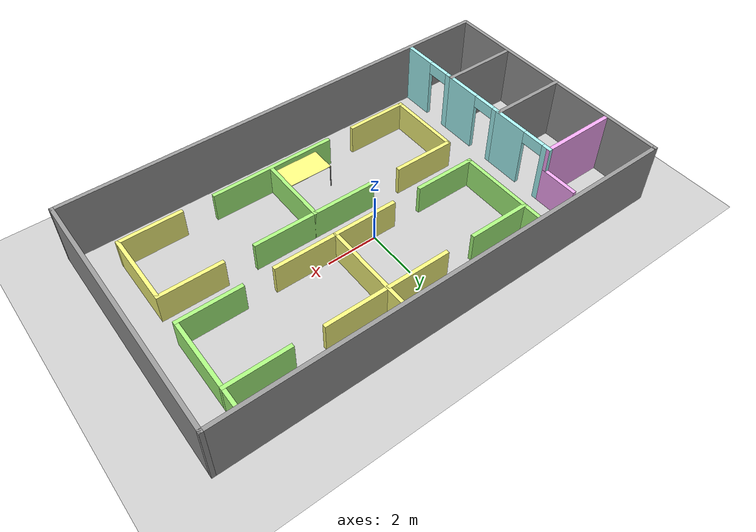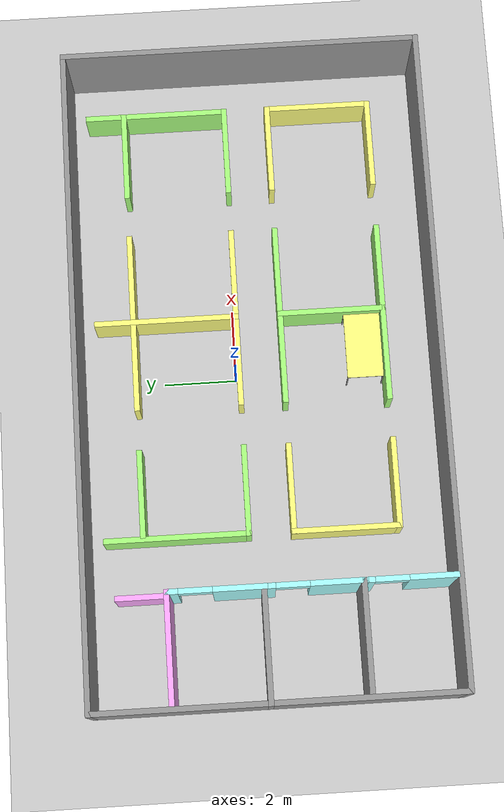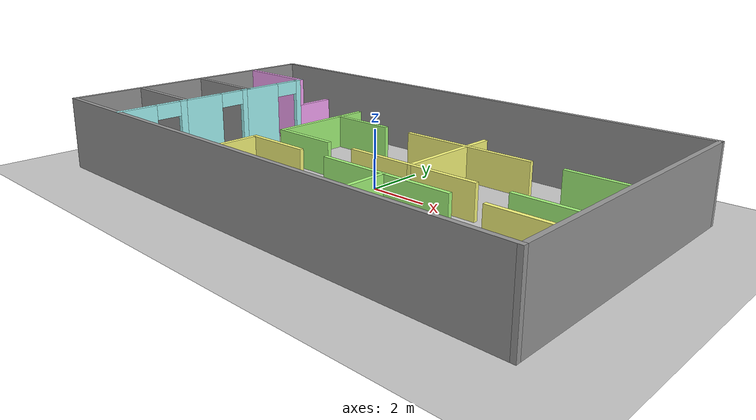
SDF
<sdf version="1.6">
 <world name="default">
  <model name="ground_plane">
   <static>1</static>
   <link name="link">
    <collision name="collision">
     <geometry><plane><normal>0 0 1</normal><size>100 100</size></plane></geometry>
     <surface><friction><ode><mu>100</mu><mu2>50</mu2></ode></friction></surface>
    </collision>
    <visual name="visual">
     <cast_shadows>0</cast_shadows>
     <geometry><plane><normal>0 0 1</normal><size>100 100</size></plane></geometry>
     <material>
      <script><uri>file://media/materials/scripts/gazebo.material</uri><name>Gazebo/Grey</name></script>
     </material>
    </visual>
   </link>
  </model>
  <model name="sr_office">
   <pose>-0.02579 -0.62634 0 0 -0 0</pose>
   <link name="Wall_11">
    <pose>-6.0106 -3.67095 0 0 -0 1.57171</pose>
    <visual name="Wall_11_Visual_0">
     <pose>-0.611587 0 1.25 0 -0 0</pose>
     <geometry><box><size>1.41152 0.15 2.5</size></box></geometry>
     <material>
      <script><uri>file://media/materials/scripts/gazebo.material</uri><name>Gazebo/Grey</name></script>
      <ambient>0.666667 1 1 1</ambient>
     </material>
     <meta><layer>0</layer></meta>
    </visual>
    <collision name="Wall_11_Collision_0">
     <geometry><box><size>1.41152 0.15 2.5</size></box></geometry>
     <pose>-0.611587 0 1.25 0 -0 0</pose>
    </collision>
    <visual name="Wall_11_Visual_1">
     <pose>1.15576 0 1.25 0 -0 0</pose>
     <geometry><box><size>0.323174 0.15 2.5</size></box></geometry>
     <material>
      <script><uri>file://media/materials/scripts/gazebo.material</uri><name>Gazebo/Grey</name></script>
      <ambient>0.666667 1 1 1</ambient>
     </material>
     <meta><layer>0</layer></meta>
    </visual>
    <collision name="Wall_11_Collision_1">
     <geometry><box><size>0.323174 0.15 2.5</size></box></geometry>
     <pose>1.15576 0 1.25 0 -0 0</pose>
    </collision>
    <visual name="Wall_11_Visual_2">
     <pose>0.544173 0 2.25 0 -0 0</pose>
     <geometry><box><size>0.9 0.15 0.5</size></box></geometry>
     <material>
      <script><uri>file://media/materials/scripts/gazebo.material</uri><name>Gazebo/Grey</name></script>
      <ambient>0.666667 1 1 1</ambient>
     </material>
     <meta><layer>0</layer></meta>
    </visual>
    <collision name="Wall_11_Collision_2">
     <geometry><box><size>0.9 0.15 0.5</size></box></geometry>
     <pose>0.544173 0 2.25 0 -0 0</pose>
    </collision>
   </link>
   <link name="Wall_12">
    <collision name="Wall_12_Collision">
     <geometry><box><size>3 0.15 2.5</size></box></geometry>
     <pose>0 0 1.25 0 -0 0</pose>
    </collision>
    <visual name="Wall_12_Visual">
     <pose>0 0 1.25 0 -0 0</pose>
     <geometry><box><size>3 0.15 2.5</size></box></geometry>
     <material>
      <script><uri>file://media/materials/scripts/gazebo.material</uri><name>Gazebo/Grey</name></script>
      <ambient>1 1 1 1</ambient>
     </material>
     <meta><layer>0</layer></meta>
    </visual>
    <pose>-7.43674 -2.38916 0 0 -0 3.14159</pose>
   </link>
   <link name="Wall_19">
    <pose>-6.01174 1.48653 0 0 -0 1.5708</pose>
    <visual name="Wall_19_Visual_0">
     <pose>-0.636752 0 1.25 0 -0 0</pose>
     <geometry><box><size>1.44348 0.15 2.5</size></box></geometry>
     <material>
      <script><uri>file://media/materials/scripts/gazebo.material</uri><name>Gazebo/Grey</name></script>
      <ambient>0.666667 1 1 1</ambient>
     </material>
     <meta><layer>0</layer></meta>
    </visual>
    <collision name="Wall_19_Collision_0">
     <geometry><box><size>1.44348 0.15 2.5</size></box></geometry>
     <pose>-0.636752 0 1.25 0 -0 0</pose>
    </collision>
    <visual name="Wall_19_Visual_1">
     <pose>1.17174 0 1.25 0 -0 0</pose>
     <geometry><box><size>0.373505 0.15 2.5</size></box></geometry>
     <material>
      <script><uri>file://media/materials/scripts/gazebo.material</uri><name>Gazebo/Grey</name></script>
      <ambient>0.666667 1 1 1</ambient>
     </material>
     <meta><layer>0</layer></meta>
    </visual>
    <collision name="Wall_19_Collision_1">
     <geometry><box><size>0.373505 0.15 2.5</size></box></geometry>
     <pose>1.17174 0 1.25 0 -0 0</pose>
    </collision>
    <visual name="Wall_19_Visual_2">
     <pose>0.534986 0 2.25 0 -0 0</pose>
     <geometry><box><size>0.9 0.15 0.5</size></box></geometry>
     <material>
      <script><uri>file://media/materials/scripts/gazebo.material</uri><name>Gazebo/Grey</name></script>
      <ambient>0.666667 1 1 1</ambient>
     </material>
     <meta><layer>0</layer></meta>
    </visual>
    <collision name="Wall_19_Collision_2">
     <geometry><box><size>0.9 0.15 0.5</size></box></geometry>
     <pose>0.534986 0 2.25 0 -0 0</pose>
    </collision>
   </link>
   <link name="Wall_2">
    <collision name="Wall_2_Collision">
     <geometry><box><size>10 0.15 2.5</size></box></geometry>
     <pose>0 0 1.25 0 -0 0</pose>
    </collision>
    <visual name="Wall_2_Visual">
     <pose>0 0 1.25 0 -0 0</pose>
     <geometry><box><size>10 0.15 2.5</size></box></geometry>
     <material>
      <script><uri>file://media/materials/scripts/gazebo.material</uri><name>Gazebo/Grey</name></script>
      <ambient>1 1 1 1</ambient>
     </material>
     <meta><layer>0</layer></meta>
    </visual>
    <pose>-9.01174 2.1e-05 0 0 0 -1.5708</pose>
   </link>
   <link name="Wall_20">
    <collision name="Wall_20_Collision">
     <geometry><box><size>3 0.15 2.5</size></box></geometry>
     <pose>0 0 1.25 0 -0 0</pose>
    </collision>
    <visual name="Wall_20_Visual">
     <pose>0 0 1.25 0 -0 0</pose>
     <geometry><box><size>3 0.15 2.5</size></box></geometry>
     <material>
      <script><uri>file://media/materials/scripts/gazebo.material</uri><name>Gazebo/Grey</name></script>
      <ambient>1 0.666667 1 1</ambient>
     </material>
     <meta><layer>0</layer></meta>
    </visual>
    <pose>-7.43674 2.77002 0 0 -0 3.14159</pose>
   </link>
   <link name="Wall_22">
    <collision name="Wall_22_Collision">
     <geometry><box><size>1.5 0.15 1.5</size></box></geometry>
     <pose>0 0 0.75 0 -0 0</pose>
    </collision>
    <visual name="Wall_22_Visual">
     <pose>0 0 0.75 0 -0 0</pose>
     <geometry><box><size>1.5 0.15 1.5</size></box></geometry>
     <material>
      <script><uri>file://media/materials/scripts/gazebo.material</uri><name>Gazebo/Grey</name></script>
      <ambient>1 0.666667 1 1</ambient>
     </material>
     <meta><layer>0</layer></meta>
    </visual>
    <pose>-6.01174 3.44502 0 0 -0 1.5708</pose>
   </link>
   <link name="Wall_24">
    <collision name="Wall_24_Collision">
     <geometry><box><size>2.5 0.15 1.2</size></box></geometry>
     <pose>0 0 0.6 0 -0 0</pose>
    </collision>
    <visual name="Wall_24_Visual">
     <pose>0 0 0.6 0 -0 0</pose>
     <geometry><box><size>2.5 0.15 1.2</size></box></geometry>
     <material>
      <script><uri>file://media/materials/scripts/gazebo.material</uri><name>Gazebo/Grey</name></script>
      <ambient>1 1 0.498039 1</ambient>
     </material>
     <meta><layer>0</layer></meta>
    </visual>
    <pose>-3.28174 -3.54698 0 0 -0 3.14159</pose>
   </link>
   <link name="Wall_25">
    <collision name="Wall_25_Collision">
     <geometry><box><size>3.0027 0.15 1.2</size></box></geometry>
     <pose>0 0 0.6 0 -0 0</pose>
    </collision>
    <visual name="Wall_25_Visual">
     <pose>0 0 0.6 0 -0 0</pose>
     <geometry><box><size>3.0027 0.15 1.2</size></box></geometry>
     <material>
      <script><uri>file://media/materials/scripts/gazebo.material</uri><name>Gazebo/Grey</name></script>
      <ambient>1 1 0.498039 1</ambient>
     </material>
     <meta><layer>0</layer></meta>
    </visual>
    <pose>-4.45674 -2.12048 0 0 -0 1.5708</pose>
   </link>
   <link name="Wall_26">
    <collision name="Wall_26_Collision">
     <geometry><box><size>2.5 0.15 1.2</size></box></geometry>
     <pose>0 0 0.6 0 -0 0</pose>
    </collision>
    <visual name="Wall_26_Visual">
     <pose>0 0 0.6 0 -0 0</pose>
     <geometry><box><size>2.5 0.15 1.2</size></box></geometry>
     <material>
      <script><uri>file://media/materials/scripts/gazebo.material</uri><name>Gazebo/Grey</name></script>
      <ambient>1 1 0.498039 1</ambient>
     </material>
     <meta><layer>0</layer></meta>
    </visual>
    <pose>-3.28174 -0.693979 0 0 -0 0</pose>
   </link>
   <link name="Wall_29">
    <collision name="Wall_29_Collision">
     <geometry><box><size>5 0.15 1.2</size></box></geometry>
     <pose>0 0 0.6 0 -0 0</pose>
    </collision>
    <visual name="Wall_29_Visual">
     <pose>0 0 0.6 0 -0 0</pose>
     <geometry><box><size>5 0.15 1.2</size></box></geometry>
     <material>
      <script><uri>file://media/materials/scripts/gazebo.material</uri><name>Gazebo/Grey</name></script>
      <ambient>0.666667 1 0.498039 1</ambient>
     </material>
     <meta><layer>0</layer></meta>
    </visual>
    <pose>1.59726 -0.693979 0 0 -0 0</pose>
   </link>
   <link name="Wall_3">
    <collision name="Wall_3_Collision">
     <geometry><box><size>18.1739 0.15 2.5</size></box></geometry>
     <pose>0 0 1.25 0 -0 0</pose>
    </collision>
    <visual name="Wall_3_Visual">
     <pose>0 0 1.25 0 -0 0</pose>
     <geometry><box><size>18.1739 0.15 2.5</size></box></geometry>
     <material>
      <script><uri>file://media/materials/scripts/gazebo.material</uri><name>Gazebo/Grey</name></script>
      <ambient>1 1 1 1</ambient>
     </material>
     <meta><layer>0</layer></meta>
    </visual>
    <pose>0 -4.925 0 0 0 -2e-06</pose>
   </link>
   <link name="Wall_33">
    <collision name="Wall_33_Collision">
     <geometry><box><size>5 0.15 1.2</size></box></geometry>
     <pose>0 0 0.6 0 -0 0</pose>
    </collision>
    <visual name="Wall_33_Visual">
     <pose>0 0 0.6 0 -0 0</pose>
     <geometry><box><size>5 0.15 1.2</size></box></geometry>
     <material>
      <script><uri>file://media/materials/scripts/gazebo.material</uri><name>Gazebo/Grey</name></script>
      <ambient>0.666667 1 0.498039 1</ambient>
     </material>
     <meta><layer>0</layer></meta>
    </visual>
    <pose>1.51726 -3.54398 0 0 -0 0</pose>
   </link>
   <link name="Wall_36">
    <collision name="Wall_36_Collision">
     <geometry><box><size>2.999 0.15 1.2</size></box></geometry>
     <pose>0 0 0.6 0 -0 0</pose>
    </collision>
    <visual name="Wall_36_Visual">
     <pose>0 0 0.6 0 -0 0</pose>
     <geometry><box><size>2.999 0.15 1.2</size></box></geometry>
     <material>
      <script><uri>file://media/materials/scripts/gazebo.material</uri><name>Gazebo/Grey</name></script>
      <ambient>0.666667 1 0.498039 1</ambient>
     </material>
     <meta><layer>0</layer></meta>
    </visual>
    <pose>1.61226 -2.11848 0 0 -0 1.5708</pose>
   </link>
   <link name="Wall_38">
    <collision name="Wall_38_Collision">
     <geometry><box><size>2.5 0.15 1.2</size></box></geometry>
     <pose>0 0 0.6 0 -0 0</pose>
    </collision>
    <visual name="Wall_38_Visual">
     <pose>0 0 0.6 0 -0 0</pose>
     <geometry><box><size>2.5 0.15 1.2</size></box></geometry>
     <material>
      <script><uri>file://media/materials/scripts/gazebo.material</uri><name>Gazebo/Grey</name></script>
      <ambient>1 1 0.498039 1</ambient>
     </material>
     <meta><layer>0</layer></meta>
    </visual>
    <pose>6.46326 -0.693979 0 0 -0 0</pose>
   </link>
   <link name="Wall_39">
    <collision name="Wall_39_Collision">
     <geometry><box><size>3 0.15 1.2</size></box></geometry>
     <pose>0 0 0.6 0 -0 0</pose>
    </collision>
    <visual name="Wall_39_Visual">
     <pose>0 0 0.6 0 -0 0</pose>
     <geometry><box><size>3 0.15 1.2</size></box></geometry>
     <material>
      <script><uri>file://media/materials/scripts/gazebo.material</uri><name>Gazebo/Grey</name></script>
      <ambient>1 1 0.498039 1</ambient>
     </material>
     <meta><layer>0</layer></meta>
    </visual>
    <pose>7.63826 -2.11898 0 0 0 -1.5708</pose>
   </link>
   <link name="Wall_4">
    <collision name="Wall_4_Collision">
     <geometry><box><size>10 0.15 2.5</size></box></geometry>
     <pose>0 0 1.25 0 -0 0</pose>
    </collision>
    <visual name="Wall_4_Visual">
     <pose>0 0 1.25 0 -0 0</pose>
     <geometry><box><size>10 0.15 2.5</size></box></geometry>
     <material>
      <script><uri>file://media/materials/scripts/gazebo.material</uri><name>Gazebo/Grey</name></script>
      <ambient>1 1 1 1</ambient>
     </material>
     <meta><layer>0</layer></meta>
    </visual>
    <pose>9.01174 -2.1e-05 0 0 -0 1.5708</pose>
   </link>
   <link name="Wall_40">
    <collision name="Wall_40_Collision">
     <geometry><box><size>2.5 0.15 1.2</size></box></geometry>
     <pose>0 0 0.6 0 -0 0</pose>
    </collision>
    <visual name="Wall_40_Visual">
     <pose>0 0 0.6 0 -0 0</pose>
     <geometry><box><size>2.5 0.15 1.2</size></box></geometry>
     <material>
      <script><uri>file://media/materials/scripts/gazebo.material</uri><name>Gazebo/Grey</name></script>
      <ambient>1 1 0.498039 1</ambient>
     </material>
     <meta><layer>0</layer></meta>
    </visual>
    <pose>6.46326 -3.54398 0 0 -0 3.14159</pose>
   </link>
   <link name="Wall_42">
    <collision name="Wall_42_Collision">
     <geometry><box><size>2.5 0.15 1.2</size></box></geometry>
     <pose>0 0 0.6 0 -0 0</pose>
    </collision>
    <visual name="Wall_42_Visual">
     <pose>0 0 0.6 0 -0 0</pose>
     <geometry><box><size>2.5 0.15 1.2</size></box></geometry>
     <material>
      <script><uri>file://media/materials/scripts/gazebo.material</uri><name>Gazebo/Grey</name></script>
      <ambient>0.666667 1 0.498039 1</ambient>
     </material>
     <meta><layer>0</layer></meta>
    </visual>
    <pose>-3.25874 0.531021 0 0 -0 3.14159</pose>
   </link>
   <link name="Wall_43">
    <collision name="Wall_43_Collision">
     <geometry><box><size>4.00484 0.15 1.2</size></box></geometry>
     <pose>0 0 0.6 0 -0 0</pose>
    </collision>
    <visual name="Wall_43_Visual">
     <pose>0 0 0.6 0 -0 0</pose>
     <geometry><box><size>4.00484 0.15 1.2</size></box></geometry>
     <material>
      <script><uri>file://media/materials/scripts/gazebo.material</uri><name>Gazebo/Grey</name></script>
      <ambient>0.666667 1 0.498039 1</ambient>
     </material>
     <meta><layer>0</layer></meta>
    </visual>
    <pose>-4.43374 2.45852 0 0 -0 1.5708</pose>
   </link>
   <link name="Wall_45">
    <collision name="Wall_45_Collision">
     <geometry><box><size>2.5 0.15 1.2</size></box></geometry>
     <pose>0 0 0.6 0 -0 0</pose>
    </collision>
    <visual name="Wall_45_Visual">
     <pose>0 0 0.6 0 -0 0</pose>
     <geometry><box><size>2.5 0.15 1.2</size></box></geometry>
     <material>
      <script><uri>file://media/materials/scripts/gazebo.material</uri><name>Gazebo/Grey</name></script>
      <ambient>0.666667 1 0.498039 1</ambient>
     </material>
     <meta><layer>0</layer></meta>
    </visual>
    <pose>-3.24374 3.38102 0 0 -0 0</pose>
   </link>
   <link name="Wall_47">
    <collision name="Wall_47_Collision">
     <geometry><box><size>5 0.15 1.2</size></box></geometry>
     <pose>0 0 0.6 0 -0 0</pose>
    </collision>
    <visual name="Wall_47_Visual">
     <pose>0 0 0.6 0 -0 0</pose>
     <geometry><box><size>5 0.15 1.2</size></box></geometry>
     <material>
      <script><uri>file://media/materials/scripts/gazebo.material</uri><name>Gazebo/Grey</name></script>
      <ambient>1 1 0.498039 1</ambient>
     </material>
     <meta><layer>0</layer></meta>
    </visual>
    <pose>1.59726 0.531021 0 0 -0 0</pose>
   </link>
   <link name="Wall_49">
    <collision name="Wall_49_Collision">
     <geometry><box><size>4 0.15 1.2</size></box></geometry>
     <pose>0 0 0.6 0 -0 0</pose>
    </collision>
    <visual name="Wall_49_Visual">
     <pose>0 0 0.6 0 -0 0</pose>
     <geometry><box><size>4 0.15 1.2</size></box></geometry>
     <material>
      <script><uri>file://media/materials/scripts/gazebo.material</uri><name>Gazebo/Grey</name></script>
      <ambient>1 1 0.498039 1</ambient>
     </material>
     <meta><layer>0</layer></meta>
    </visual>
    <pose>1.60426 2.45602 0 0 -0 1.5708</pose>
   </link>
   <link name="Wall_5">
    <collision name="Wall_5_Collision">
     <geometry><box><size>18.1739 0.15 2.5</size></box></geometry>
     <pose>0 0 1.25 0 -0 0</pose>
    </collision>
    <visual name="Wall_5_Visual">
     <pose>0 0 1.25 0 -0 0</pose>
     <geometry><box><size>18.1739 0.15 2.5</size></box></geometry>
     <material>
      <script><uri>file://media/materials/scripts/gazebo.material</uri><name>Gazebo/Grey</name></script>
      <ambient>1 1 1 1</ambient>
     </material>
     <meta><layer>0</layer></meta>
    </visual>
    <pose>0 4.925 0 0 -0 3.14159</pose>
   </link>
   <link name="Wall_51">
    <collision name="Wall_51_Collision">
     <geometry><box><size>5 0.15 1.2</size></box></geometry>
     <pose>0 0 0.6 0 -0 0</pose>
    </collision>
    <visual name="Wall_51_Visual">
     <pose>0 0 0.6 0 -0 0</pose>
     <geometry><box><size>5 0.15 1.2</size></box></geometry>
     <material>
      <script><uri>file://media/materials/scripts/gazebo.material</uri><name>Gazebo/Grey</name></script>
      <ambient>1 1 0.498039 1</ambient>
     </material>
     <meta><layer>0</layer></meta>
    </visual>
    <pose>1.59726 3.38102 0 0 -0 0</pose>
   </link>
   <link name="Wall_53">
    <collision name="Wall_53_Collision">
     <geometry><box><size>2.5 0.15 1.2</size></box></geometry>
     <pose>0 0 0.6 0 -0 0</pose>
    </collision>
    <visual name="Wall_53_Visual">
     <pose>0 0 0.6 0 -0 0</pose>
     <geometry><box><size>2.5 0.15 1.2</size></box></geometry>
     <material>
      <script><uri>file://media/materials/scripts/gazebo.material</uri><name>Gazebo/Grey</name></script>
      <ambient>0.666667 1 0.498039 1</ambient>
     </material>
     <meta><layer>0</layer></meta>
    </visual>
    <pose>6.46326 0.531021 0 0 -0 0</pose>
   </link>
   <link name="Wall_55">
    <collision name="Wall_55_Collision">
     <geometry><box><size>2.5 0.15 1.2</size></box></geometry>
     <pose>0 0 0.6 0 -0 0</pose>
    </collision>
    <visual name="Wall_55_Visual">
     <pose>0 0 0.6 0 -0 0</pose>
     <geometry><box><size>2.5 0.15 1.2</size></box></geometry>
     <material>
      <script><uri>file://media/materials/scripts/gazebo.material</uri><name>Gazebo/Grey</name></script>
      <ambient>0.666667 1 0.498039 1</ambient>
     </material>
     <meta><layer>0</layer></meta>
    </visual>
    <pose>6.46326 3.38102 0 0 -0 3.14159</pose>
   </link>
   <link name="Wall_57">
    <collision name="Wall_57_Collision">
     <geometry><box><size>4 0.15 1.2</size></box></geometry>
     <pose>0 0 0.6 0 -0 0</pose>
    </collision>
    <visual name="Wall_57_Visual">
     <pose>0 0 0.6 0 -0 0</pose>
     <geometry><box><size>4 0.15 1.2</size></box></geometry>
     <material>
      <script><uri>file://media/materials/scripts/gazebo.material</uri><name>Gazebo/Grey</name></script>
      <ambient>0.666667 1 0.498039 1</ambient>
     </material>
     <meta><layer>0</layer></meta>
    </visual>
    <pose>7.63826 2.45602 0 0 -0 1.5708</pose>
   </link>
   <link name="Wall_7">
    <pose>-6.01174 -1.11278 0 0 -0 1.5708</pose>
    <visual name="Wall_7_Visual_0">
     <pose>-0.629255 0 1.25 0 -0 0</pose>
     <geometry><box><size>1.52314 0.15 2.5</size></box></geometry>
     <material>
      <script><uri>file://media/materials/scripts/gazebo.material</uri><name>Gazebo/Grey</name></script>
      <ambient>0.666667 1 1 1</ambient>
     </material>
     <meta><layer>0</layer></meta>
    </visual>
    <collision name="Wall_7_Collision_0">
     <geometry><box><size>1.52314 0.15 2.5</size></box></geometry>
     <pose>-0.629255 0 1.25 0 -0 0</pose>
    </collision>
    <visual name="Wall_7_Visual_1">
     <pose>1.21157 0 1.25 0 -0 0</pose>
     <geometry><box><size>0.358509 0.15 2.5</size></box></geometry>
     <material>
      <script><uri>file://media/materials/scripts/gazebo.material</uri><name>Gazebo/Grey</name></script>
      <ambient>0.666667 1 1 1</ambient>
     </material>
     <meta><layer>0</layer></meta>
    </visual>
    <collision name="Wall_7_Collision_1">
     <geometry><box><size>0.358509 0.15 2.5</size></box></geometry>
     <pose>1.21157 0 1.25 0 -0 0</pose>
    </collision>
    <visual name="Wall_7_Visual_2">
     <pose>0.582314 0 2.25 0 -0 0</pose>
     <geometry><box><size>0.9 0.15 0.5</size></box></geometry>
     <material>
      <script><uri>file://media/materials/scripts/gazebo.material</uri><name>Gazebo/Grey</name></script>
      <ambient>0.666667 1 1 1</ambient>
     </material>
     <meta><layer>0</layer></meta>
    </visual>
    <collision name="Wall_7_Collision_2">
     <geometry><box><size>0.9 0.15 0.5</size></box></geometry>
     <pose>0.582314 0 2.25 0 -0 0</pose>
    </collision>
   </link>
   <link name="Wall_8">
    <collision name="Wall_8_Collision">
     <geometry><box><size>3.15 0.15 2.5</size></box></geometry>
     <pose>0 0 1.25 0 -0 0</pose>
    </collision>
    <visual name="Wall_8_Visual">
     <pose>0 0 1.25 0 -0 0</pose>
     <geometry><box><size>3.15 0.15 2.5</size></box></geometry>
     <material>
      <script><uri>file://media/materials/scripts/gazebo.material</uri><name>Gazebo/Grey</name></script>
      <ambient>1 1 1 1</ambient>
     </material>
     <meta><layer>0</layer></meta>
    </visual>
    <pose>-7.51174 0.222766 0 0 -0 3.14159</pose>
   </link>
   <static>1</static>
  </model>
  <model name="custom_table_clone_4">
   <link name="link_0">
    <pose>-1e-06 0 0.4 0 -0 0</pose>
    <inertial>
     <mass>1</mass>
     <inertia>
      <ixx>0.166667</ixx>
      <ixy>0</ixy>
      <ixz>0</ixz>
      <iyy>0.166667</iyy>
      <iyz>0</iyz>
      <izz>0.166667</izz>
     </inertia>
    </inertial>
    <visual name="visual">
     <geometry><box><size>1.8 1 0.02</size></box></geometry>
     <material>
      <lighting>1</lighting>
      <script><uri>file://media/materials/scripts/gazebo.material</uri><name>Gazebo/Grey</name></script>
      <shader type="pixel"><normal_map>__default__</normal_map></shader>
      <ambient>0.4 0.4 0.4 0.5</ambient>
      <diffuse>1 1 0.5 1</diffuse>
      <specular>0.4 0.4 0.4 1</specular>
      <emissive>0 0 0 1</emissive>
     </material>
    </visual>
    <collision name="collision">
     <geometry><box><size>1.8 1 0.02</size></box></geometry>
     <surface>
      <friction>
       <ode><mu>1</mu><mu2>1</mu2><fdir1>0 0 0</fdir1><slip1>0</slip1><slip2>0</slip2></ode>
       <torsional>
        <coefficient>1</coefficient>
        <patch_radius>0</patch_radius>
        <surface_radius>0</surface_radius>
        <use_patch_radius>1</use_patch_radius>
        <ode><slip>0</slip></ode>
       </torsional>
      </friction>
      <bounce><restitution_coefficient>0</restitution_coefficient><threshold>1e+06</threshold></bounce>
      <contact>
       <collide_without_contact>0</collide_without_contact>
       <collide_without_contact_bitmask>1</collide_without_contact_bitmask>
       <collide_bitmask>1</collide_bitmask>
       <ode>
        <soft_cfm>0</soft_cfm>
        <soft_erp>0.2</soft_erp>
        <kp>1e+13</kp>
        <kd>1</kd>
        <max_vel>0.01</max_vel>
        <min_depth>0</min_depth>
       </ode>
       <bullet>
        <split_impulse>1</split_impulse>
        <split_impulse_penetration_threshold>-0.01</split_impulse_penetration_threshold>
        <soft_cfm>0</soft_cfm>
        <soft_erp>0.2</soft_erp>
        <kp>1e+13</kp>
        <kd>1</kd>
       </bullet>
      </contact>
     </surface>
    </collision>
   </link>
   <link name="link_1_clone">
    <pose>0.884999 -0.485 -0.1 0 -0 0</pose>
    <inertial>
     <mass>1</mass>
     <inertia>
      <ixx>0.166667</ixx>
      <ixy>0</ixy>
      <ixz>0</ixz>
      <iyy>0.166667</iyy>
      <iyz>0</iyz>
      <izz>0.166667</izz>
     </inertia>
    </inertial>
    <visual name="visual">
     <geometry><box><size>0.03 0.03 0.98</size></box></geometry>
     <material>
      <lighting>1</lighting>
      <script><uri>file://media/materials/scripts/gazebo.material</uri><name>Gazebo/Grey</name></script>
      <shader type="pixel"><normal_map>__default__</normal_map></shader>
      <ambient>0.3 0.3 0.3 1</ambient>
      <diffuse>0.7 0.7 0.7 1</diffuse>
      <specular>0.01 0.01 0.01 1</specular>
      <emissive>0 0 0 1</emissive>
     </material>
    </visual>
    <collision name="collision">
     <geometry><box><size>0.03 0.03 0.98</size></box></geometry>
     <surface>
      <friction>
       <ode><mu>1</mu><mu2>1</mu2><fdir1>0 0 0</fdir1><slip1>0</slip1><slip2>0</slip2></ode>
       <torsional>
        <coefficient>1</coefficient>
        <patch_radius>0</patch_radius>
        <surface_radius>0</surface_radius>
        <use_patch_radius>1</use_patch_radius>
        <ode><slip>0</slip></ode>
       </torsional>
      </friction>
      <bounce><restitution_coefficient>0</restitution_coefficient><threshold>1e+06</threshold></bounce>
      <contact>
       <collide_without_contact>0</collide_without_contact>
       <collide_without_contact_bitmask>1</collide_without_contact_bitmask>
       <collide_bitmask>1</collide_bitmask>
       <ode>
        <soft_cfm>0</soft_cfm>
        <soft_erp>0.2</soft_erp>
        <kp>1e+13</kp>
        <kd>1</kd>
        <max_vel>0.01</max_vel>
        <min_depth>0</min_depth>
       </ode>
       <bullet>
        <split_impulse>1</split_impulse>
        <split_impulse_penetration_threshold>-0.01</split_impulse_penetration_threshold>
        <soft_cfm>0</soft_cfm>
        <soft_erp>0.2</soft_erp>
        <kp>1e+13</kp>
        <kd>1</kd>
       </bullet>
      </contact>
     </surface>
    </collision>
   </link>
   <link name="link_1_clone_0">
    <pose>-0.885001 0.485 -0.1 0 -0 0</pose>
    <inertial>
     <mass>1</mass>
     <inertia>
      <ixx>0.166667</ixx>
      <ixy>0</ixy>
      <ixz>0</ixz>
      <iyy>0.166667</iyy>
      <iyz>0</iyz>
      <izz>0.166667</izz>
     </inertia>
    </inertial>
    <visual name="visual">
     <geometry><box><size>0.03 0.03 0.98</size></box></geometry>
     <material>
      <lighting>1</lighting>
      <script><uri>file://media/materials/scripts/gazebo.material</uri><name>Gazebo/Grey</name></script>
      <shader type="pixel"><normal_map>__default__</normal_map></shader>
      <ambient>0.3 0.3 0.3 1</ambient>
      <diffuse>0.7 0.7 0.7 1</diffuse>
      <specular>0.01 0.01 0.01 1</specular>
      <emissive>0 0 0 1</emissive>
     </material>
    </visual>
    <collision name="collision">
     <geometry><box><size>0.03 0.03 0.98</size></box></geometry>
     <surface>
      <friction>
       <ode><mu>1</mu><mu2>1</mu2><fdir1>0 0 0</fdir1><slip1>0</slip1><slip2>0</slip2></ode>
       <torsional>
        <coefficient>1</coefficient>
        <patch_radius>0</patch_radius>
        <surface_radius>0</surface_radius>
        <use_patch_radius>1</use_patch_radius>
        <ode><slip>0</slip></ode>
       </torsional>
      </friction>
      <bounce><restitution_coefficient>0</restitution_coefficient><threshold>1e+06</threshold></bounce>
      <contact>
       <collide_without_contact>0</collide_without_contact>
       <collide_without_contact_bitmask>1</collide_without_contact_bitmask>
       <collide_bitmask>1</collide_bitmask>
       <ode>
        <soft_cfm>0</soft_cfm>
        <soft_erp>0.2</soft_erp>
        <kp>1e+13</kp>
        <kd>1</kd>
        <max_vel>0.01</max_vel>
        <min_depth>0</min_depth>
       </ode>
       <bullet>
        <split_impulse>1</split_impulse>
        <split_impulse_penetration_threshold>-0.01</split_impulse_penetration_threshold>
        <soft_cfm>0</soft_cfm>
        <soft_erp>0.2</soft_erp>
        <kp>1e+13</kp>
        <kd>1</kd>
       </bullet>
      </contact>
     </surface>
    </collision>
   </link>
   <link name="link_1_clone_clone">
    <pose>0.884999 0.485 -0.1 0 -0 0</pose>
    <inertial>
     <mass>1</mass>
     <inertia>
      <ixx>0.166667</ixx>
      <ixy>0</ixy>
      <ixz>0</ixz>
      <iyy>0.166667</iyy>
      <iyz>0</iyz>
      <izz>0.166667</izz>
     </inertia>
    </inertial>
    <visual name="visual">
     <geometry><box><size>0.03 0.03 0.98</size></box></geometry>
     <material>
      <lighting>1</lighting>
      <script><uri>file://media/materials/scripts/gazebo.material</uri><name>Gazebo/Grey</name></script>
      <shader type="pixel"><normal_map>__default__</normal_map></shader>
      <ambient>0.3 0.3 0.3 1</ambient>
      <diffuse>0.7 0.7 0.7 1</diffuse>
      <specular>0.01 0.01 0.01 1</specular>
      <emissive>0 0 0 1</emissive>
     </material>
    </visual>
    <collision name="collision">
     <geometry><box><size>0.03 0.03 0.98</size></box></geometry>
     <surface>
      <friction>
       <ode><mu>1</mu><mu2>1</mu2><fdir1>0 0 0</fdir1><slip1>0</slip1><slip2>0</slip2></ode>
       <torsional>
        <coefficient>1</coefficient>
        <patch_radius>0</patch_radius>
        <surface_radius>0</surface_radius>
        <use_patch_radius>1</use_patch_radius>
        <ode><slip>0</slip></ode>
       </torsional>
      </friction>
      <bounce><restitution_coefficient>0</restitution_coefficient><threshold>1e+06</threshold></bounce>
      <contact>
       <collide_without_contact>0</collide_without_contact>
       <collide_without_contact_bitmask>1</collide_without_contact_bitmask>
       <collide_bitmask>1</collide_bitmask>
       <ode>
        <soft_cfm>0</soft_cfm>
        <soft_erp>0.2</soft_erp>
        <kp>1e+13</kp>
        <kd>1</kd>
        <max_vel>0.01</max_vel>
        <min_depth>0</min_depth>
       </ode>
       <bullet>
        <split_impulse>1</split_impulse>
        <split_impulse_penetration_threshold>-0.01</split_impulse_penetration_threshold>
        <soft_cfm>0</soft_cfm>
        <soft_erp>0.2</soft_erp>
        <kp>1e+13</kp>
        <kd>1</kd>
       </bullet>
      </contact>
     </surface>
    </collision>
   </link>
   <link name="link_1_clone_clone_0">
    <pose>-0.885001 -0.485 -0.1 0 -0 0</pose>
    <inertial>
     <mass>1</mass>
     <inertia>
      <ixx>0.166667</ixx>
      <ixy>0</ixy>
      <ixz>0</ixz>
      <iyy>0.166667</iyy>
      <iyz>0</iyz>
      <izz>0.166667</izz>
     </inertia>
    </inertial>
    <visual name="visual">
     <geometry><box><size>0.03 0.03 0.98</size></box></geometry>
     <material>
      <lighting>1</lighting>
      <script><uri>file://media/materials/scripts/gazebo.material</uri><name>Gazebo/Grey</name></script>
      <shader type="pixel"><normal_map>__default__</normal_map></shader>
      <ambient>0.3 0.3 0.3 1</ambient>
      <diffuse>0.7 0.7 0.7 1</diffuse>
      <specular>0.01 0.01 0.01 1</specular>
      <emissive>0 0 0 1</emissive>
     </material>
    </visual>
    <collision name="collision">
     <geometry><box><size>0.03 0.03 0.98</size></box></geometry>
     <surface>
      <friction>
       <ode><mu>1</mu><mu2>1</mu2><fdir1>0 0 0</fdir1><slip1>0</slip1><slip2>0</slip2></ode>
       <torsional>
        <coefficient>1</coefficient>
        <patch_radius>0</patch_radius>
        <surface_radius>0</surface_radius>
        <use_patch_radius>1</use_patch_radius>
        <ode><slip>0</slip></ode>
       </torsional>
      </friction>
      <bounce><restitution_coefficient>0</restitution_coefficient><threshold>1e+06</threshold></bounce>
      <contact>
       <collide_without_contact>0</collide_without_contact>
       <collide_without_contact_bitmask>1</collide_without_contact_bitmask>
       <collide_bitmask>1</collide_bitmask>
       <ode>
        <soft_cfm>0</soft_cfm>
        <soft_erp>0.2</soft_erp>
        <kp>1e+13</kp>
        <kd>1</kd>
        <max_vel>0.01</max_vel>
        <min_depth>0</min_depth>
       </ode>
       <bullet>
        <split_impulse>1</split_impulse>
        <split_impulse_penetration_threshold>-0.01</split_impulse_penetration_threshold>
        <soft_cfm>0</soft_cfm>
        <soft_erp>0.2</soft_erp>
        <kp>1e+13</kp>
        <kd>1</kd>
       </bullet>
      </contact>
     </surface>
    </collision>
   </link>
   <joint name="link_0_JOINT_0" type="fixed">
    <parent>link_0</parent>
    <child>link_1_clone</child>
    <physics>
     <ode><limit><cfm>0</cfm><erp>0.2</erp></limit><suspension><cfm>0</cfm><erp>0.2</erp></suspension></ode>
    </physics>
   </joint>
   <joint name="link_0_JOINT_1" type="fixed">
    <parent>link_0</parent>
    <child>link_1_clone_0</child>
    <physics>
     <ode><limit><cfm>0</cfm><erp>0.2</erp></limit><suspension><cfm>0</cfm><erp>0.2</erp></suspension></ode>
    </physics>
   </joint>
   <joint name="link_0_JOINT_2" type="fixed">
    <parent>link_0</parent>
    <child>link_1_clone_clone</child>
    <physics>
     <ode><limit><cfm>0</cfm><erp>0.2</erp></limit><suspension><cfm>0</cfm><erp>0.2</erp></suspension></ode>
    </physics>
   </joint>
   <joint name="link_0_JOINT_3" type="fixed">
    <parent>link_0</parent>
    <child>link_1_clone_clone_0</child>
    <physics>
     <ode><limit><cfm>0</cfm><erp>0.2</erp></limit><suspension><cfm>0</cfm><erp>0.2</erp></suspension></ode>
    </physics>
   </joint>
   <static>1</static>
   <pose>0.586182 -3.56942 0.6 0 -0 0</pose>
  </model>
 </world>
</sdf>
